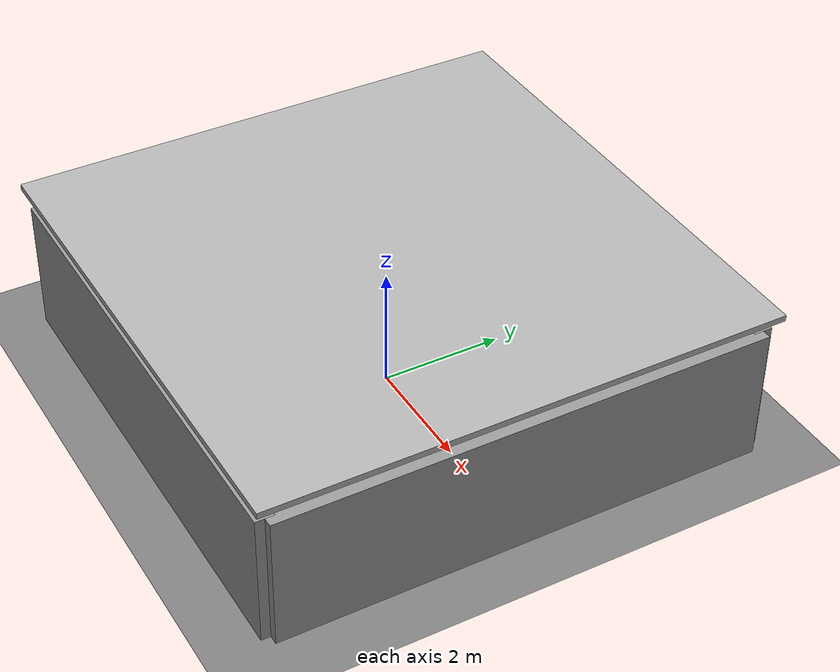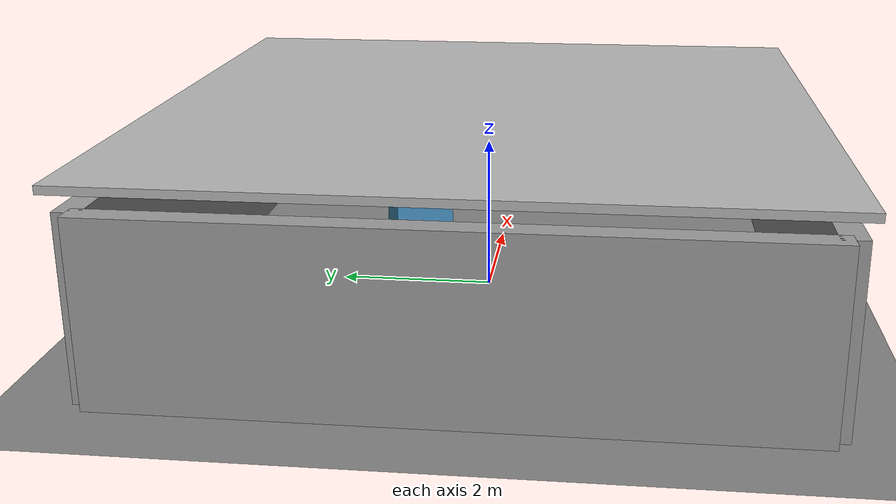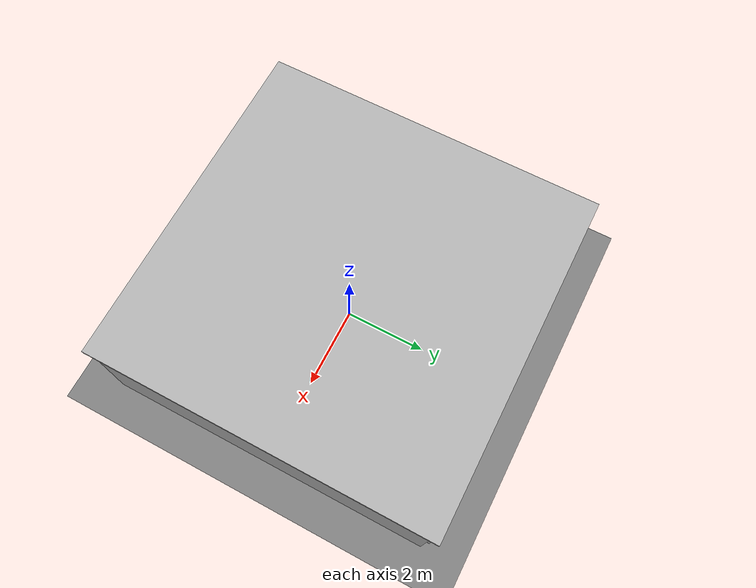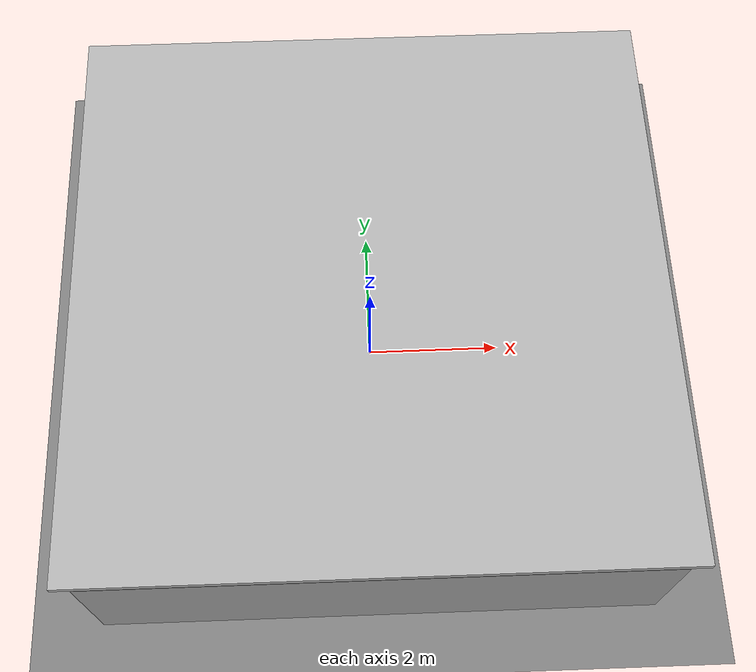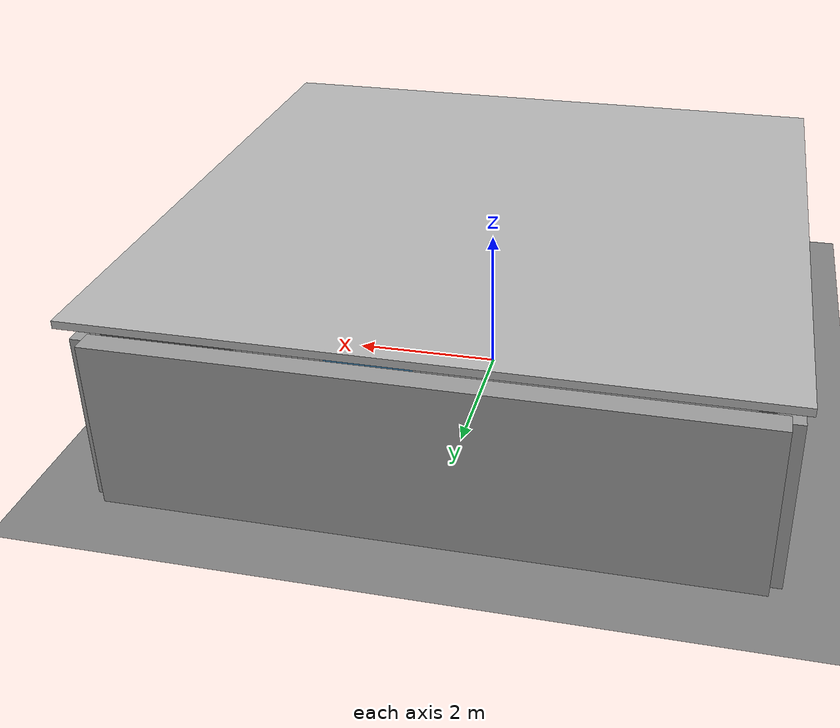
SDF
<?xml version="1.0" ?>
<!-- 独立 mid-360 演示场景：地面 + 四面墙 + 几个障碍物，让 3D 点云有实际内容。
     无 gazebo_ros 插件（由 gazebo_ros empty_world.launch 注入）。 -->
<sdf version="1.7">
  <world name="mid360_demo_world">
    <light name='sun' type='directional'>
      <cast_shadows>1</cast_shadows>
      <pose>0 0 10 0 0 0</pose>
      <diffuse>0.8 0.8 0.8 1</diffuse>
      <specular>0.2 0.2 0.2 1</specular>
      <attenuation>
        <range>1000</range>
        <constant>0.9</constant>
        <linear>0.01</linear>
        <quadratic>0.001</quadratic>
      </attenuation>
      <direction>-0.5 0.1 -0.9</direction>
    </light>

    <model name='ground_plane'>
      <static>1</static>
      <link name='link'>
        <collision name='collision'>
          <geometry>
            <plane>
              <normal>0 0 1</normal>
              <size>30 30</size>
            </plane>
          </geometry>
          <surface>
            <friction>
              <ode>
                <mu>1</mu>
                <mu2>1</mu2>
              </ode>
            </friction>
            <bounce>
              <restitution_coefficient>0</restitution_coefficient>
            </bounce>
          </surface>
        </collision>
        <visual name='visual'>
          <geometry>
            <plane>
              <normal>0 0 1</normal>
              <size>30 30</size>
            </plane>
          </geometry>
          <material>
            <ambient>0.5 0.5 0.5 1</ambient>
            <diffuse>0.5 0.5 0.5 1</diffuse>
            <specular>0.01 0.01 0.01 1</specular>
          </material>
        </visual>
      </link>
    </model>

    <!-- 四面墙（静态）围成一个 8x8 房间，墙高 2m -->
    <model name='wall_n'>
      <static>1</static>
      <pose>0 4.0 1.0 0 0 0</pose>
      <link name='link'>
        <collision name='c'>
          <geometry><box><size>8 0.3 2.4</size></box></geometry>
        </collision>
        <visual name='v'>
          <geometry><box><size>8 0.3 2.4</size></box></geometry>
          <material><ambient>0.6 0.6 0.6 1</ambient><diffuse>0.6 0.6 0.6 1</diffuse></material>
        </visual>
      </link>
    </model>
    <model name='wall_s'>
      <static>1</static>
      <pose>0 -4.0 1.0 0 0 0</pose>
      <link name='link'>
        <collision name='c'>
          <geometry><box><size>8 0.3 2.4</size></box></geometry>
        </collision>
        <visual name='v'>
          <geometry><box><size>8 0.3 2.4</size></box></geometry>
          <material><ambient>0.6 0.6 0.6 1</ambient><diffuse>0.6 0.6 0.6 1</diffuse></material>
        </visual>
      </link>
    </model>
    <model name='wall_e'>
      <static>1</static>
      <pose>4.0 0 1.0 0 0 0</pose>
      <link name='link'>
        <collision name='c'>
          <geometry><box><size>0.3 8 2.4</size></box></geometry>
        </collision>
        <visual name='v'>
          <geometry><box><size>0.3 8 2.4</size></box></geometry>
          <material><ambient>0.6 0.6 0.6 1</ambient><diffuse>0.6 0.6 0.6 1</diffuse></material>
        </visual>
      </link>
    </model>
    <model name='wall_w'>
      <static>1</static>
      <pose>-4.0 0 1.0 0 0 0</pose>
      <link name='link'>
        <collision name='c'>
          <geometry><box><size>0.3 8 2.4</size></box></geometry>
        </collision>
        <visual name='v'>
          <geometry><box><size>0.3 8 2.4</size></box></geometry>
          <material><ambient>0.6 0.6 0.6 1</ambient><diffuse>0.6 0.6 0.6 1</diffuse></material>
        </visual>
      </link>
    </model>

    <!-- 房间内障碍物 -->
    <model name='obs_a'>
      <static>1</static>
      <pose>1.5 1.2 0.5 0 0 0.3</pose>
      <link name='link'>
        <collision name='c'>
          <geometry><box><size>1.2 0.8 1.0</size></box></geometry>
        </collision>
        <visual name='v'>
          <geometry><box><size>1.2 0.8 1.0</size></box></geometry>
          <material><ambient>0.3 0.6 0.8 1</ambient><diffuse>0.3 0.6 0.8 1</diffuse></material>
        </visual>
      </link>
    </model>
    <model name='obs_b'>
      <static>1</static>
      <pose>-1.8 -0.8 0.4 0 0 -0.4</pose>
      <link name='link'>
        <collision name='c'>
          <geometry><box><size>1.5 0.6 0.8</size></box></geometry>
        </collision>
        <visual name='v'>
          <geometry><box><size>1.5 0.6 0.8</size></box></geometry>
          <material><ambient>0.8 0.5 0.2 1</ambient><diffuse>0.8 0.5 0.2 1</diffuse></material>
        </visual>
      </link>
    </model>
    <model name='obs_c'>
      <static>1</static>
      <pose>0.2 -1.8 0.3 0 0 0</pose>
      <link name='link'>
        <collision name='c'>
          <geometry><box><size>0.6 0.6 0.6</size></box></geometry>
        </collision>
        <visual name='v'>
          <geometry><box><size>0.6 0.6 0.6</size></box></geometry>
          <material><ambient>0.2 0.8 0.3 1</ambient><diffuse>0.2 0.8 0.3 1</diffuse></material>
        </visual>
      </link>
    </model>

    <!-- 天花板：让向上射线命中，形成完整室内点云 -->
    <model name='ceiling'>
      <static>1</static>
      <pose>0 0 2.5 0 0 0</pose>
      <link name='link'>
        <collision name='c'>
          <geometry><box><size>8.4 8.4 0.1</size></box></geometry>
        </collision>
        <visual name='v'>
          <geometry><box><size>8.4 8.4 0.1</size></box></geometry>
          <material><ambient>0.7 0.7 0.7 1</ambient><diffuse>0.7 0.7 0.7 1</diffuse></material>
        </visual>
      </link>
    </model>
  </world>
</sdf>
